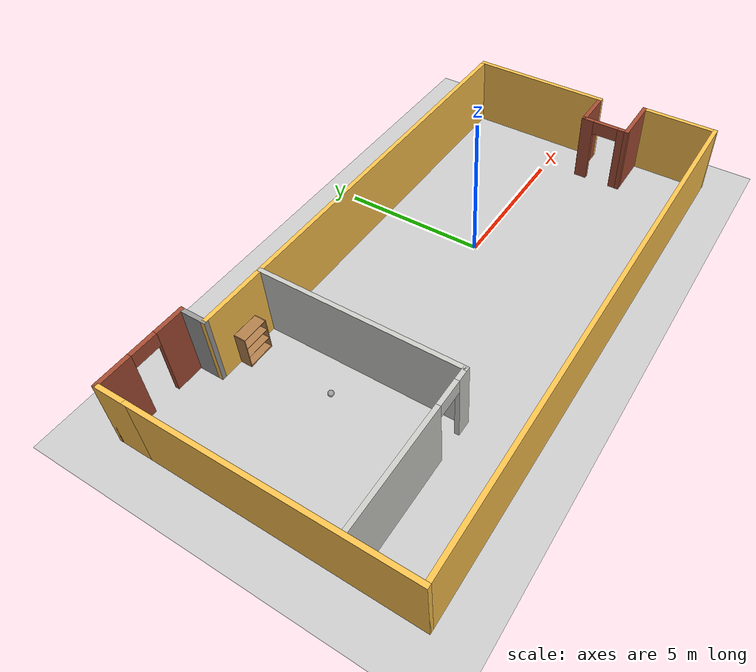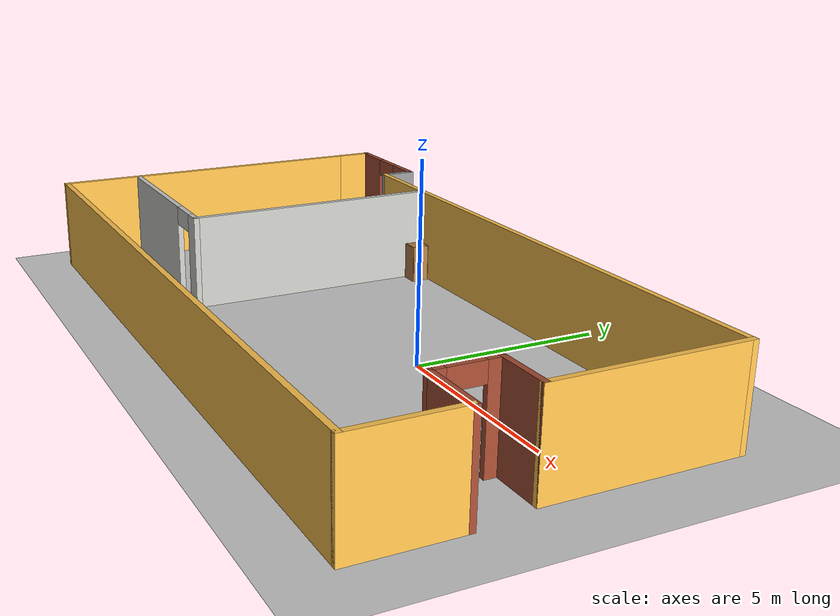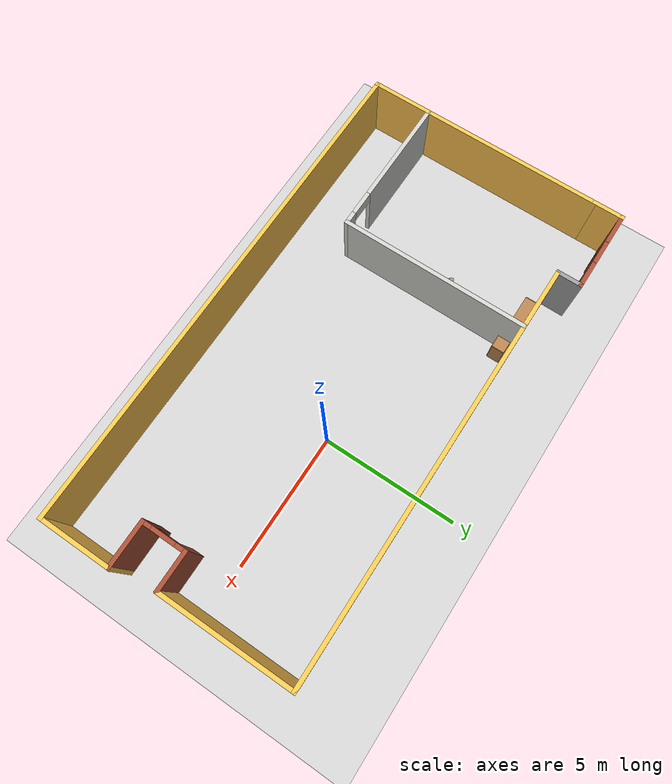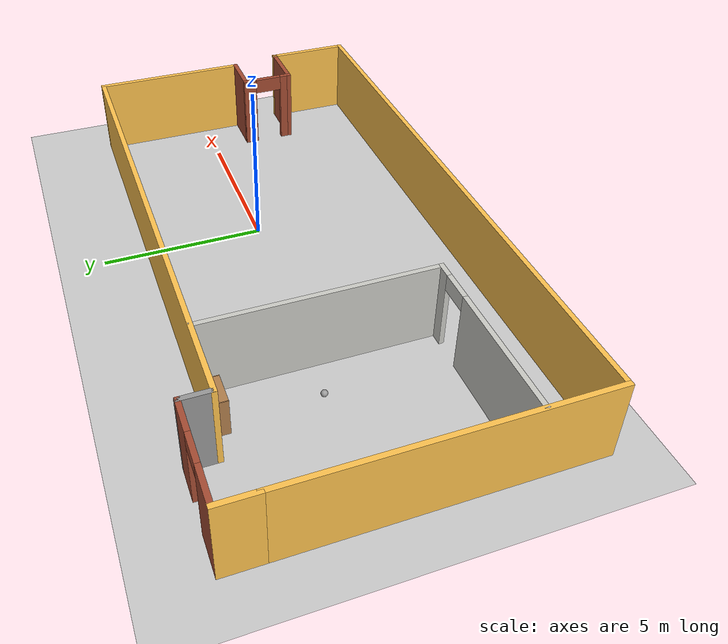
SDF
<sdf version="1.6">
 <world name="default">
  <light name="sun" type="directional">
   <pose>0 0 10 0 -0 0</pose>
   <diffuse>0.8 0.8 0.8 1</diffuse>
   <specular>0.2 0.2 0.2 1</specular>
   <attenuation>
    <range>1000</range>
    <constant>0.9</constant>
    <linear>0.01</linear>
    <quadratic>0.001</quadratic>
   </attenuation>
   <direction>-0.5 0.1 -0.9</direction>
  </light>
  <model name="ground_plane">
   <static>1</static>
   <link name="link">
    <collision name="collision">
     <geometry><plane><normal>0 0 1</normal><size>100 100</size></plane></geometry>
     <surface>
      <contact><collide_bitmask>65535</collide_bitmask></contact>
      <friction><ode><mu>100</mu><mu2>50</mu2></ode></friction>
     </surface>
    </collision>
    <visual name="visual">
     <cast_shadows>0</cast_shadows>
     <geometry><plane><normal>0 0 1</normal><size>100 100</size></plane></geometry>
     <material>
      <script><uri>file://media/materials/scripts/gazebo.material</uri><name>Gazebo/Grey</name></script>
     </material>
    </visual>
   </link>
  </model>
  <gravity>0 0 -9.8</gravity>
  <magnetic_field>6e-06 2.3e-05 -4.2e-05</magnetic_field>
  <atmosphere type="adiabatic"/>
  <physics name="default_physics" default="0" type="ode">
   <max_step_size>0.001</max_step_size>
   <real_time_factor>1</real_time_factor>
   <real_time_update_rate>1000</real_time_update_rate>
  </physics>
  <scene><ambient>0.4 0.4 0.4 1</ambient><background>0.7 0.7 0.7 1</background><shadows>1</shadows></scene>
  <spherical_coordinates>
   <surface_model>EARTH_WGS84</surface_model>
   <latitude_deg>0</latitude_deg>
   <longitude_deg>0</longitude_deg>
   <elevation>0</elevation>
   <heading_deg>0</heading_deg>
  </spherical_coordinates>
  <model name="mybuilding">
   <pose>-2.2338 -0.51996 0 0 -0 0</pose>
   <link name="Wall_0">
    <collision name="Wall_0_Collision">
     <geometry><box><size>9 0.15 2.5</size></box></geometry>
     <pose>0 0 1.25 0 -0 0</pose>
    </collision>
    <visual name="Wall_0_Visual">
     <pose>0 0 1.25 0 -0 0</pose>
     <geometry><box><size>9 0.15 2.5</size></box></geometry>
     <material>
      <script><uri>file://media/materials/scripts/gazebo.material</uri><name>Gazebo/Grey</name></script>
      <ambient>1 0.764706 0.305882 1</ambient>
     </material>
     <meta><layer>0</layer></meta>
    </visual>
    <pose>-9.3 -0.525 0 0 0 -1.5708</pose>
   </link>
   <link name="Wall_1">
    <collision name="Wall_1_Collision">
     <geometry><box><size>18.75 0.15 2.5</size></box></geometry>
     <pose>0 0 1.25 0 -0 0</pose>
    </collision>
    <visual name="Wall_1_Visual">
     <pose>0 0 1.25 0 -0 0</pose>
     <geometry><box><size>18.75 0.15 2.5</size></box></geometry>
     <material>
      <script><uri>file://media/materials/scripts/gazebo.material</uri><name>Gazebo/Grey</name></script>
      <ambient>1 0.764706 0.305882 1</ambient>
     </material>
     <meta><layer>0</layer></meta>
    </visual>
    <pose>0 -4.95 0 0 -0 0</pose>
   </link>
   <link name="Wall_12">
    <collision name="Wall_12_Collision">
     <geometry><box><size>1.2 0.15 2.5</size></box></geometry>
     <pose>0 0 1.25 0 -0 0</pose>
    </collision>
    <visual name="Wall_12_Visual">
     <pose>0 0 1.25 0 -0 0</pose>
     <geometry><box><size>1.2 0.15 2.5</size></box></geometry>
     <material>
      <script><uri>file://media/materials/scripts/gazebo.material</uri><name>Gazebo/Grey</name></script>
      <ambient>1 0.764706 0.305882 1</ambient>
     </material>
     <meta><layer>0</layer></meta>
    </visual>
    <pose>-9.3 4.425 0 0 -0 1.5708</pose>
   </link>
   <link name="Wall_14">
    <collision name="Wall_14_Collision">
     <geometry><box><size>7 0.15 2.5</size></box></geometry>
     <pose>0 0 1.25 0 -0 0</pose>
    </collision>
    <visual name="Wall_14_Visual">
     <pose>0 0 1.25 0 -0 0</pose>
     <geometry><box><size>7 0.15 2.5</size></box></geometry>
     <material>
      <script><uri>file://media/materials/scripts/gazebo.material</uri><name>Gazebo/CeilingTiled</name></script>
      <ambient>1 1 1 1</ambient>
     </material>
     <meta><layer>0</layer></meta>
    </visual>
    <pose>-4.00856 0.647396 0 0 0 -1.5708</pose>
   </link>
   <link name="Wall_15">
    <pose>-6.63356 -2.7776 0 0 -0 3.14159</pose>
    <visual name="Wall_15_Visual_0">
     <pose>-2.44699 0 1.25 0 -0 0</pose>
     <geometry><box><size>0.506025 0.15 2.5</size></box></geometry>
     <material>
      <script><uri>file://media/materials/scripts/gazebo.material</uri><name>Gazebo/CeilingTiled</name></script>
      <ambient>1 1 1 1</ambient>
     </material>
     <meta><layer>0</layer></meta>
    </visual>
    <collision name="Wall_15_Collision_0">
     <geometry><box><size>0.506025 0.15 2.5</size></box></geometry>
     <pose>-2.44699 0 1.25 0 -0 0</pose>
    </collision>
    <visual name="Wall_15_Visual_1">
     <pose>0.703012 0 1.25 0 -0 0</pose>
     <geometry><box><size>3.99397 0.15 2.5</size></box></geometry>
     <material>
      <script><uri>file://media/materials/scripts/gazebo.material</uri><name>Gazebo/CeilingTiled</name></script>
      <ambient>1 1 1 1</ambient>
     </material>
     <meta><layer>0</layer></meta>
    </visual>
    <collision name="Wall_15_Collision_1">
     <geometry><box><size>3.99397 0.15 2.5</size></box></geometry>
     <pose>0.703012 0 1.25 0 -0 0</pose>
    </collision>
    <visual name="Wall_15_Visual_2">
     <pose>-1.74398 0 2.25 0 -0 0</pose>
     <geometry><box><size>0.9 0.15 0.5</size></box></geometry>
     <material>
      <script><uri>file://media/materials/scripts/gazebo.material</uri><name>Gazebo/CeilingTiled</name></script>
      <ambient>1 1 1 1</ambient>
     </material>
     <meta><layer>0</layer></meta>
    </visual>
    <collision name="Wall_15_Collision_2">
     <geometry><box><size>0.9 0.15 0.5</size></box></geometry>
     <pose>-1.74398 0 2.25 0 -0 0</pose>
    </collision>
   </link>
   <link name="Wall_2">
    <collision name="Wall_2_Collision">
     <geometry><box><size>2.75 0.15 2.5</size></box></geometry>
     <pose>0 0 1.25 0 -0 0</pose>
    </collision>
    <visual name="Wall_2_Visual">
     <pose>0 0 1.25 0 -0 0</pose>
     <geometry><box><size>2.75 0.15 2.5</size></box></geometry>
     <material>
      <script><uri>file://media/materials/scripts/gazebo.material</uri><name>Gazebo/Grey</name></script>
      <ambient>1 0.764706 0.305882 1</ambient>
     </material>
     <meta><layer>0</layer></meta>
    </visual>
    <pose>9.3 -3.65 0 0 -0 1.5708</pose>
   </link>
   <link name="Wall_3">
    <collision name="Wall_3_Collision">
     <geometry><box><size>1.75 0.15 2.5</size></box></geometry>
     <pose>0 0 1.25 0 -0 0</pose>
    </collision>
    <visual name="Wall_3_Visual">
     <pose>0 0 1.25 0 -0 0</pose>
     <geometry><box><size>1.75 0.15 2.5</size></box></geometry>
     <material>
      <script><uri>file://media/materials/scripts/gazebo.material</uri><name>Gazebo/Bricks</name></script>
      <ambient>1 1 1 1</ambient>
     </material>
     <meta><layer>0</layer></meta>
    </visual>
    <pose>8.5 -2.35 0 0 -0 3.14159</pose>
   </link>
   <link name="Wall_4">
    <pose>7.7 -1.55 0 0 -0 1.5708</pose>
    <visual name="Wall_4_Visual_0">
     <pose>-0.672106 0 1.25 0 -0 0</pose>
     <geometry><box><size>0.405788 0.15 2.5</size></box></geometry>
     <material>
      <script><uri>file://media/materials/scripts/gazebo.material</uri><name>Gazebo/Bricks</name></script>
      <ambient>1 1 1 1</ambient>
     </material>
     <meta><layer>0</layer></meta>
    </visual>
    <collision name="Wall_4_Collision_0">
     <geometry><box><size>0.405788 0.15 2.5</size></box></geometry>
     <pose>-0.672106 0 1.25 0 -0 0</pose>
    </collision>
    <visual name="Wall_4_Visual_1">
     <pose>0.652894 0 1.25 0 -0 0</pose>
     <geometry><box><size>0.444212 0.15 2.5</size></box></geometry>
     <material>
      <script><uri>file://media/materials/scripts/gazebo.material</uri><name>Gazebo/Bricks</name></script>
      <ambient>1 1 1 1</ambient>
     </material>
     <meta><layer>0</layer></meta>
    </visual>
    <collision name="Wall_4_Collision_1">
     <geometry><box><size>0.444212 0.15 2.5</size></box></geometry>
     <pose>0.652894 0 1.25 0 -0 0</pose>
    </collision>
    <visual name="Wall_4_Visual_2">
     <pose>-0.019212 0 2.25 0 -0 0</pose>
     <geometry><box><size>0.9 0.15 0.5</size></box></geometry>
     <material>
      <script><uri>file://media/materials/scripts/gazebo.material</uri><name>Gazebo/Bricks</name></script>
      <ambient>1 1 1 1</ambient>
     </material>
     <meta><layer>0</layer></meta>
    </visual>
    <collision name="Wall_4_Collision_2">
     <geometry><box><size>0.9 0.15 0.5</size></box></geometry>
     <pose>-0.019212 0 2.25 0 -0 0</pose>
    </collision>
   </link>
   <link name="Wall_5">
    <collision name="Wall_5_Collision">
     <geometry><box><size>1.5 0.15 2.5</size></box></geometry>
     <pose>0 0 1.25 0 -0 0</pose>
    </collision>
    <visual name="Wall_5_Visual">
     <pose>0 0 1.25 0 -0 0</pose>
     <geometry><box><size>1.5 0.15 2.5</size></box></geometry>
     <material>
      <script><uri>file://media/materials/scripts/gazebo.material</uri><name>Gazebo/Bricks</name></script>
      <ambient>1 1 1 1</ambient>
     </material>
     <meta><layer>0</layer></meta>
    </visual>
    <pose>8.375 -0.75 0 0 -0 0</pose>
   </link>
   <link name="Wall_6">
    <collision name="Wall_6_Collision">
     <geometry><box><size>5 0.15 2.5</size></box></geometry>
     <pose>0 0 1.25 0 -0 0</pose>
    </collision>
    <visual name="Wall_6_Visual">
     <pose>0 0 1.25 0 -0 0</pose>
     <geometry><box><size>5 0.15 2.5</size></box></geometry>
     <material>
      <script><uri>file://media/materials/scripts/gazebo.material</uri><name>Gazebo/Grey</name></script>
      <ambient>1 0.764706 0.305882 1</ambient>
     </material>
     <meta><layer>0</layer></meta>
    </visual>
    <pose>9.05 1.675 0 0 -0 1.5708</pose>
   </link>
   <link name="Wall_7">
    <collision name="Wall_7_Collision">
     <geometry><box><size>15.5 0.15 2.5</size></box></geometry>
     <pose>0 0 1.25 0 -0 0</pose>
    </collision>
    <visual name="Wall_7_Visual">
     <pose>0 0 1.25 0 -0 0</pose>
     <geometry><box><size>15.5 0.15 2.5</size></box></geometry>
     <material>
      <script><uri>file://media/materials/scripts/gazebo.material</uri><name>Gazebo/Grey</name></script>
      <ambient>1 0.764706 0.305882 1</ambient>
     </material>
     <meta><layer>0</layer></meta>
    </visual>
    <pose>1.375 4.1 0 0 -0 3.14159</pose>
   </link>
   <link name="Wall_8">
    <collision name="Wall_8_Collision">
     <geometry><box><size>1 0.15 2.5</size></box></geometry>
     <pose>0 0 1.25 0 -0 0</pose>
    </collision>
    <visual name="Wall_8_Visual">
     <pose>0 0 1.25 0 -0 0</pose>
     <geometry><box><size>1 0.15 2.5</size></box></geometry>
     <material>
      <script><uri>file://media/materials/scripts/gazebo.material</uri><name>Gazebo/Grey</name></script>
      <ambient>1 1 1 1</ambient>
     </material>
     <meta><layer>0</layer></meta>
    </visual>
    <pose>-6.3 4.525 0 0 -0 1.5708</pose>
   </link>
   <link name="Wall_9">
    <pose>-7.8 4.95 0 0 -0 3.14159</pose>
    <visual name="Wall_9_Visual_0">
     <pose>-1.04802 0 1.25 0 -0 0</pose>
     <geometry><box><size>1.05395 0.15 2.5</size></box></geometry>
     <material>
      <script><uri>file://media/materials/scripts/gazebo.material</uri><name>Gazebo/Bricks</name></script>
      <ambient>1 1 1 1</ambient>
     </material>
     <meta><layer>0</layer></meta>
    </visual>
    <collision name="Wall_9_Collision_0">
     <geometry><box><size>1.05395 0.15 2.5</size></box></geometry>
     <pose>-1.04802 0 1.25 0 -0 0</pose>
    </collision>
    <visual name="Wall_9_Visual_1">
     <pose>0.976977 0 1.25 0 -0 0</pose>
     <geometry><box><size>1.19605 0.15 2.5</size></box></geometry>
     <material>
      <script><uri>file://media/materials/scripts/gazebo.material</uri><name>Gazebo/Bricks</name></script>
      <ambient>1 1 1 1</ambient>
     </material>
     <meta><layer>0</layer></meta>
    </visual>
    <collision name="Wall_9_Collision_1">
     <geometry><box><size>1.19605 0.15 2.5</size></box></geometry>
     <pose>0.976977 0 1.25 0 -0 0</pose>
    </collision>
    <visual name="Wall_9_Visual_2">
     <pose>-0.071046 0 2.25 0 -0 0</pose>
     <geometry><box><size>0.9 0.15 0.5</size></box></geometry>
     <material>
      <script><uri>file://media/materials/scripts/gazebo.material</uri><name>Gazebo/Bricks</name></script>
      <ambient>1 1 1 1</ambient>
     </material>
     <meta><layer>0</layer></meta>
    </visual>
    <collision name="Wall_9_Collision_2">
     <geometry><box><size>0.9 0.15 0.5</size></box></geometry>
     <pose>-0.071046 0 2.25 0 -0 0</pose>
    </collision>
   </link>
   <static>1</static>
  </model>
  <model name="bookshelf">
   <static>1</static>
   <link name="link">
    <inertial><mass>1</mass></inertial>
    <collision name="back">
     <pose>0 0.005 0.6 0 -0 0</pose>
     <geometry><box><size>0.9 0.01 1.2</size></box></geometry>
    </collision>
    <visual name="visual1">
     <pose>0 0.005 0.6 0 -0 0</pose>
     <geometry><box><size>0.9 0.01 1.2</size></box></geometry>
     <material>
      <script><uri>file://media/materials/scripts/gazebo.material</uri><name>Gazebo/Wood</name></script>
     </material>
    </visual>
    <collision name="left_side">
     <pose>0.45 -0.195 0.6 0 -0 0</pose>
     <geometry><box><size>0.02 0.4 1.2</size></box></geometry>
    </collision>
    <visual name="visual2">
     <pose>0.45 -0.195 0.6 0 -0 0</pose>
     <geometry><box><size>0.02 0.4 1.2</size></box></geometry>
     <material>
      <script><uri>file://media/materials/scripts/gazebo.material</uri><name>Gazebo/Wood</name></script>
     </material>
    </visual>
    <collision name="right_side">
     <pose>-0.45 -0.195 0.6 0 -0 0</pose>
     <geometry><box><size>0.02 0.4 1.2</size></box></geometry>
    </collision>
    <visual name="visual3">
     <pose>-0.45 -0.195 0.6 0 -0 0</pose>
     <geometry><box><size>0.02 0.4 1.2</size></box></geometry>
     <material>
      <script><uri>file://media/materials/scripts/gazebo.material</uri><name>Gazebo/Wood</name></script>
     </material>
    </visual>
    <collision name="bottom">
     <pose>0 -0.195 0.03 0 -0 0</pose>
     <geometry><box><size>0.88 0.4 0.06</size></box></geometry>
    </collision>
    <visual name="visual4">
     <pose>0 -0.195 0.03 0 -0 0</pose>
     <geometry><box><size>0.88 0.4 0.06</size></box></geometry>
     <material>
      <script><uri>file://media/materials/scripts/gazebo.material</uri><name>Gazebo/Wood</name></script>
     </material>
    </visual>
    <collision name="top">
     <pose>0 -0.195 1.19 0 -0 0</pose>
     <geometry><box><size>0.88 0.4 0.02</size></box></geometry>
    </collision>
    <visual name="visual5">
     <pose>0 -0.195 1.19 0 -0 0</pose>
     <geometry><box><size>0.88 0.4 0.02</size></box></geometry>
     <material>
      <script><uri>file://media/materials/scripts/gazebo.material</uri><name>Gazebo/Wood</name></script>
     </material>
    </visual>
    <collision name="low_shelf">
     <pose>0 -0.195 0.43 0 -0 0</pose>
     <geometry><box><size>0.88 0.4 0.02</size></box></geometry>
    </collision>
    <visual name="visual6">
     <pose>0 -0.195 0.43 0 -0 0</pose>
     <geometry><box><size>0.88 0.4 0.02</size></box></geometry>
     <material>
      <script><uri>file://media/materials/scripts/gazebo.material</uri><name>Gazebo/Wood</name></script>
     </material>
    </visual>
    <collision name="high_shelf">
     <pose>0 -0.195 0.8 0 -0 0</pose>
     <geometry><box><size>0.88 0.4 0.02</size></box></geometry>
    </collision>
    <visual name="visual7">
     <pose>0 -0.195 0.8 0 -0 0</pose>
     <geometry><box><size>0.88 0.4 0.02</size></box></geometry>
     <material>
      <script><uri>file://media/materials/scripts/gazebo.material</uri><name>Gazebo/Wood</name></script>
     </material>
    </visual>
   </link>
   <pose>-7.35409 3.49149 0 0 -0 0</pose>
  </model>
  <model name="cabinet">
   <static>1</static>
   <link name="cabinet_bottom_plate">
    <inertial>
     <pose>0 0 -1 0 -0 0</pose>
     <inertia><ixx>2.05</ixx><ixy>0</ixy><ixz>0</ixz><iyy>2.05</iyy><iyz>0</iyz><izz>2.05</izz></inertia>
     <mass>25</mass>
    </inertial>
    <collision name="cabinet_bottom_plate_geom">
     <pose>0 0 0.01 0 -0 0</pose>
     <geometry><box><size>0.45 0.45 0.02</size></box></geometry>
    </collision>
    <visual name="cabinet_bottom_plate_geom_visual">
     <pose>0 0 0.01 0 -0 0</pose>
     <geometry><box><size>0.45 0.45 0.02</size></box></geometry>
     <material>
      <script><uri>file://media/materials/scripts/gazebo.material</uri><name>Gazebo/Wood</name></script>
     </material>
    </visual>
    <collision name="cabinet_bottom_plate_geom_cabinet_back_plate">
     <pose>0.235 0 0.51 0 -0 0</pose>
     <geometry><box><size>0.02 0.45 1.02</size></box></geometry>
    </collision>
    <visual name="cabinet_bottom_plate_geom_cabinet_back_plate_visual">
     <pose>0.235 0 0.51 0 -0 0</pose>
     <geometry><box><size>0.02 0.45 1.02</size></box></geometry>
     <material>
      <script><uri>file://media/materials/scripts/gazebo.material</uri><name>Gazebo/Wood</name></script>
     </material>
    </visual>
    <collision name="cabinet_bottom_plate_geom_cabinet_left_plate">
     <pose>0 0.235 0.51 0 -0 0</pose>
     <geometry><box><size>0.45 0.02 1.02</size></box></geometry>
    </collision>
    <visual name="cabinet_bottom_plate_geom_cabinet_left_plate_visual">
     <pose>0 0.235 0.51 0 -0 0</pose>
     <geometry><box><size>0.45 0.02 1.02</size></box></geometry>
     <material>
      <script><uri>file://media/materials/scripts/gazebo.material</uri><name>Gazebo/Wood</name></script>
     </material>
    </visual>
    <collision name="cabinet_bottom_plate_geom_cabinet_middle_plate">
     <pose>0 0 0.51 0 -0 0</pose>
     <geometry><box><size>0.45 0.45 0.02</size></box></geometry>
    </collision>
    <visual name="cabinet_bottom_plate_geom_cabinet_middle_plate_visual">
     <pose>0 0 0.51 0 -0 0</pose>
     <geometry><box><size>0.45 0.45 0.02</size></box></geometry>
     <material>
      <script><uri>file://media/materials/scripts/gazebo.material</uri><name>Gazebo/Wood</name></script>
     </material>
    </visual>
    <collision name="cabinet_bottom_plate_geom_cabinet_right_plate">
     <pose>0 -0.235 0.51 0 -0 0</pose>
     <geometry><box><size>0.45 0.02 1.02</size></box></geometry>
    </collision>
    <visual name="cabinet_bottom_plate_geom_cabinet_right_plate_visual">
     <pose>0 -0.235 0.51 0 -0 0</pose>
     <geometry><box><size>0.45 0.02 1.02</size></box></geometry>
     <material>
      <script><uri>file://media/materials/scripts/gazebo.material</uri><name>Gazebo/Wood</name></script>
     </material>
    </visual>
    <collision name="cabinet_bottom_plate_geom_cabinet_top_plate">
     <pose>0 0 1.01 0 -0 0</pose>
     <geometry><box><size>0.45 0.45 0.02</size></box></geometry>
    </collision>
    <visual name="cabinet_bottom_plate_geom_cabinet_top_plate_visual">
     <pose>0 0 1.01 0 -0 0</pose>
     <geometry><box><size>0.45 0.45 0.02</size></box></geometry>
     <material>
      <script><uri>file://media/materials/scripts/gazebo.material</uri><name>Gazebo/Wood</name></script>
     </material>
    </visual>
   </link>
   <pose>-5.89087 3.23393 0 0 -0 0</pose>
  </model>
  <model name="my_ball">
   <link name="link_0">
    <inertial>
     <mass>1</mass>
     <inertia><ixx>0.1</ixx><ixy>0</ixy><ixz>0</ixz><iyy>0.1</iyy><iyz>0</iyz><izz>0.1</izz></inertia>
    </inertial>
    <visual name="visual">
     <geometry><sphere><radius>0.1</radius></sphere></geometry>
     <material>
      <lighting>1</lighting>
      <script><uri>file://media/materials/scripts/gazebo.material</uri><name>Gazebo/Grey</name></script>
      <shader type="pixel"><normal_map>__default__</normal_map></shader>
      <ambient>1 1 1 1</ambient>
      <diffuse>1 1 1 1</diffuse>
      <specular>1 1 1 1</specular>
      <emissive>1 1 1 1</emissive>
     </material>
    </visual>
    <collision name="collision">
     <geometry><sphere><radius>0.1</radius></sphere></geometry>
     <surface>
      <friction>
       <ode><mu>1</mu><mu2>1</mu2><fdir1>0 0 0</fdir1><slip1>0</slip1><slip2>0</slip2></ode>
       <torsional>
        <coefficient>1</coefficient>
        <patch_radius>0</patch_radius>
        <surface_radius>0</surface_radius>
        <use_patch_radius>1</use_patch_radius>
        <ode><slip>0</slip></ode>
       </torsional>
      </friction>
      <bounce><restitution_coefficient>0</restitution_coefficient><threshold>1e+06</threshold></bounce>
      <contact>
       <collide_without_contact>0</collide_without_contact>
       <collide_without_contact_bitmask>1</collide_without_contact_bitmask>
       <collide_bitmask>1</collide_bitmask>
       <ode>
        <soft_cfm>0</soft_cfm>
        <soft_erp>0.2</soft_erp>
        <kp>1e+13</kp>
        <kd>1</kd>
        <max_vel>0.01</max_vel>
        <min_depth>0</min_depth>
       </ode>
       <bullet>
        <split_impulse>1</split_impulse>
        <split_impulse_penetration_threshold>-0.01</split_impulse_penetration_threshold>
        <soft_cfm>0</soft_cfm>
        <soft_erp>0.2</soft_erp>
        <kp>1e+13</kp>
        <kd>1</kd>
       </bullet>
      </contact>
     </surface>
    </collision>
   </link>
   <static>0</static>
   <pose>-7.42153 0.459604 0.1 0 -0 0</pose>
  </model>
 </world>
</sdf>
